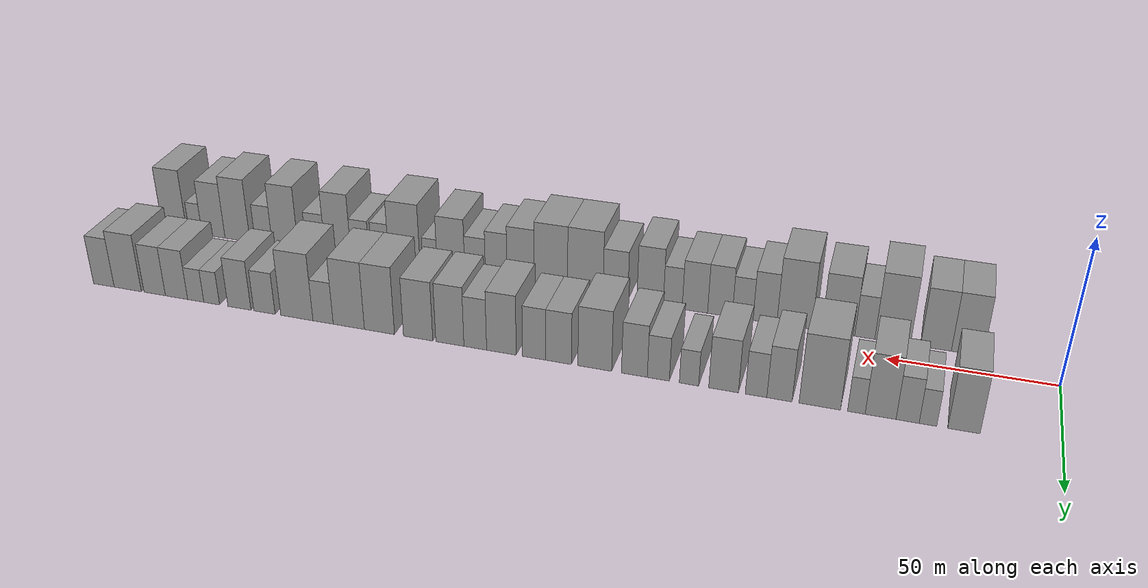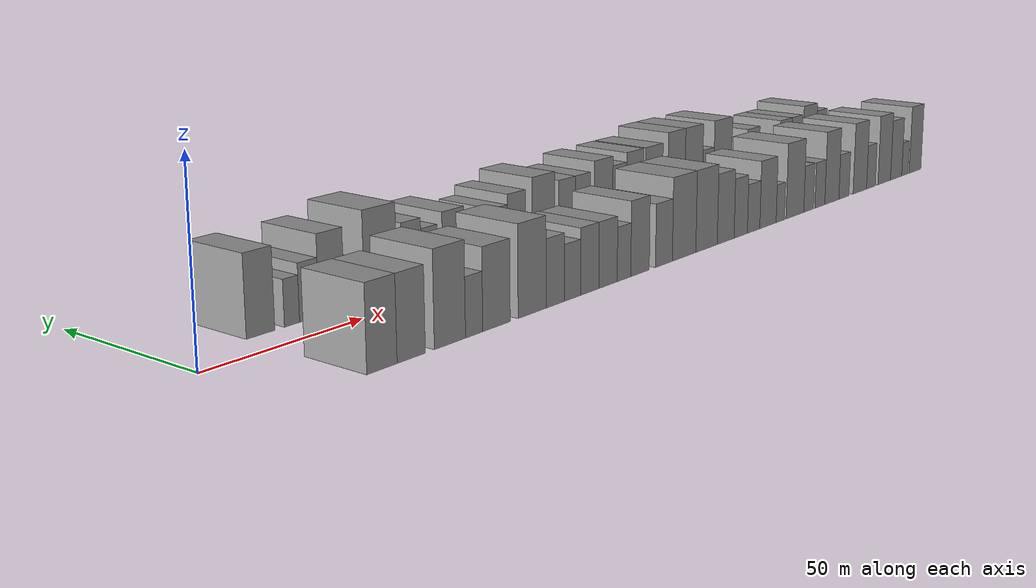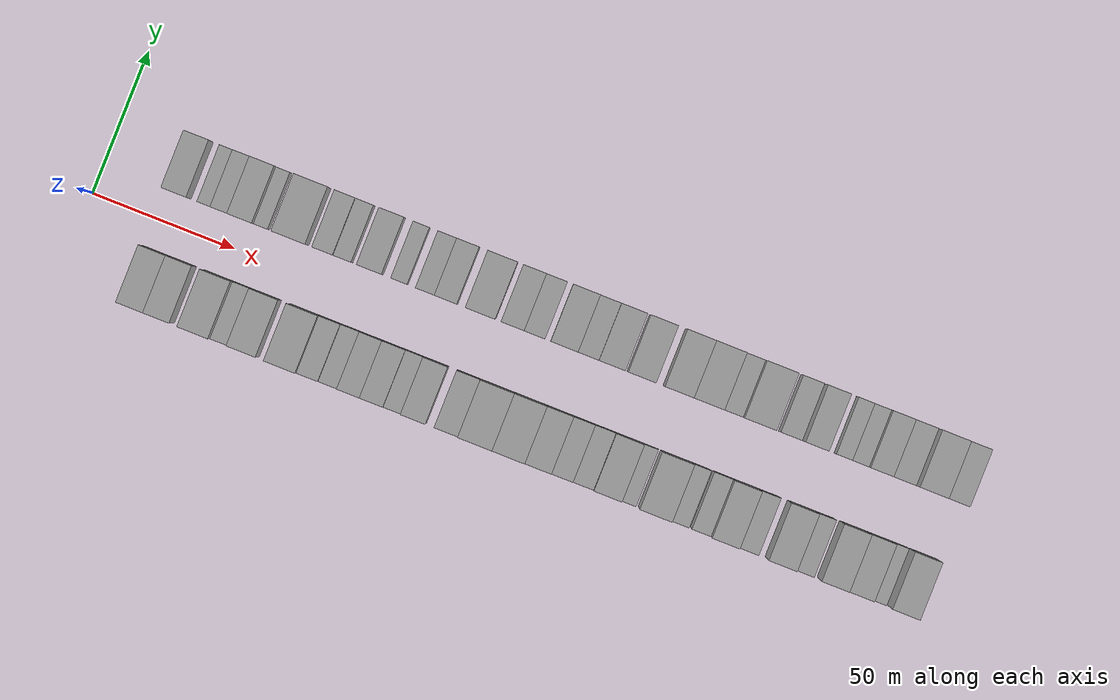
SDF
<sdf version="1.6">
 <world name="default">
  <scene>
   <sky><clouds><speed>12</speed></clouds></sky>
   <ambient>0.4 0.4 0.4 1</ambient>
   <background>0.7 0.7 0.7 1</background>
   <shadows>1</shadows>
  </scene>
  <gravity>0 0 -9.8066</gravity>
  <magnetic_field>6e-06 2.3e-05 -4.2e-05</magnetic_field>
  <physics default="0" name="default_physics" type="ode">
   <ode>
    <solver>
     <type>quick</type>
     <iters>10</iters>
     <sor>1.0</sor>
     <use_dynamic_moi_rescaling>0</use_dynamic_moi_rescaling>
    </solver>
    <constraints>
     <cfm>0</cfm>
     <erp>0.2</erp>
     <contact_max_correcting_vel>100</contact_max_correcting_vel>
     <contact_surface_layer>0.001</contact_surface_layer>
    </constraints>
   </ode>
   <max_step_size>0.004</max_step_size>
   <real_time_factor>1</real_time_factor>
   <real_time_update_rate>250</real_time_update_rate>
  </physics>
  <light name="sun" type="directional">
   <pose>0 0 10 0 0 0</pose>
   <diffuse>0.8 0.8 0.8 1</diffuse>
   <specular>0.2 0.2 0.2 1</specular>
   <attenuation>
    <range>1000</range>
    <constant>0.9</constant>
    <linear>0.01</linear>
    <quadratic>0.001</quadratic>
   </attenuation>
   <direction>-0.5 0.1 -0.9</direction>
  </light>
  <model name="building_1">
   <static>1</static>
   <pose>26.3888 20.0000 0 0.000000 0.000000 1.570796</pose>
   <link name="link">
    <pose>0 0 10.50 0 0 0</pose>
    <collision name="collision"><geometry><box><size>20.0000 8.7776 21.0000</size></box></geometry></collision>
    <visual name="visual">
     <cast_shadows>0</cast_shadows>
     <geometry><box><size>20.0000 8.7776 21.0000</size></box></geometry>
     <material>
      <script>
       <uri>model://grey_wall/materials/scripts</uri>
       <uri>model://grey_wall/materials/textures</uri>
       <name>vrc/grey_wall</name>
      </script>
     </material>
    </visual>
   </link>
  </model>
  <model name="building_2">
   <static>1</static>
   <pose>36.1989 20.0000 0 0.000000 0.000000 1.570796</pose>
   <link name="link">
    <pose>0 0 6.00 0 0 0</pose>
    <collision name="collision"><geometry><box><size>20.0000 4.8425 12.0000</size></box></geometry></collision>
    <visual name="visual">
     <cast_shadows>0</cast_shadows>
     <geometry><box><size>20.0000 4.8425 12.0000</size></box></geometry>
     <material>
      <script>
       <uri>model://grey_wall/materials/scripts</uri>
       <uri>model://grey_wall/materials/textures</uri>
       <name>vrc/grey_wall</name>
      </script>
     </material>
    </visual>
   </link>
  </model>
  <model name="building_3">
   <static>1</static>
   <pose>41.8042 20.0000 0 0.000000 0.000000 1.570796</pose>
   <link name="link">
    <pose>0 0 7.50 0 0 0</pose>
    <collision name="collision"><geometry><box><size>20.0000 6.3682 15.0000</size></box></geometry></collision>
    <visual name="visual">
     <cast_shadows>0</cast_shadows>
     <geometry><box><size>20.0000 6.3682 15.0000</size></box></geometry>
     <material>
      <script>
       <uri>model://grey_wall/materials/scripts</uri>
       <uri>model://grey_wall/materials/textures</uri>
       <name>vrc/grey_wall</name>
      </script>
     </material>
    </visual>
   </link>
  </model>
  <model name="building_4">
   <static>1</static>
   <pose>49.3002 20.0000 0 0.000000 0.000000 1.570796</pose>
   <link name="link">
    <pose>0 0 10.50 0 0 0</pose>
    <collision name="collision"><geometry><box><size>20.0000 8.6239 21.0000</size></box></geometry></collision>
    <visual name="visual">
     <cast_shadows>0</cast_shadows>
     <geometry><box><size>20.0000 8.6239 21.0000</size></box></geometry>
     <material>
      <script>
       <uri>model://grey_wall/materials/scripts</uri>
       <uri>model://grey_wall/materials/textures</uri>
       <name>vrc/grey_wall</name>
      </script>
     </material>
    </visual>
   </link>
  </model>
  <model name="building_5">
   <static>1</static>
   <pose>56.0855 20.0000 0 0.000000 0.000000 1.570796</pose>
   <link name="link">
    <pose>0 0 6.00 0 0 0</pose>
    <collision name="collision"><geometry><box><size>20.0000 4.9467 12.0000</size></box></geometry></collision>
    <visual name="visual">
     <cast_shadows>0</cast_shadows>
     <geometry><box><size>20.0000 4.9467 12.0000</size></box></geometry>
     <material>
      <script>
       <uri>model://grey_wall/materials/scripts</uri>
       <uri>model://grey_wall/materials/textures</uri>
       <name>vrc/grey_wall</name>
      </script>
     </material>
    </visual>
   </link>
  </model>
  <model name="building_6">
   <static>1</static>
   <pose>66.4720 20.0000 0 0.000000 0.000000 1.570796</pose>
   <link name="link">
    <pose>0 0 12.00 0 0 0</pose>
    <collision name="collision"><geometry><box><size>20.0000 11.8263 24.0000</size></box></geometry></collision>
    <visual name="visual">
     <cast_shadows>0</cast_shadows>
     <geometry><box><size>20.0000 11.8263 24.0000</size></box></geometry>
     <material>
      <script>
       <uri>model://grey_wall/materials/scripts</uri>
       <uri>model://grey_wall/materials/textures</uri>
       <name>vrc/grey_wall</name>
      </script>
     </material>
    </visual>
   </link>
  </model>
  <model name="building_7">
   <static>1</static>
   <pose>78.0322 20.0000 0 0.000000 0.000000 1.570796</pose>
   <link name="link">
    <pose>0 0 9.00 0 0 0</pose>
    <collision name="collision"><geometry><box><size>20.0000 7.2941 18.0000</size></box></geometry></collision>
    <visual name="visual">
     <cast_shadows>0</cast_shadows>
     <geometry><box><size>20.0000 7.2941 18.0000</size></box></geometry>
     <material>
      <script>
       <uri>model://grey_wall/materials/scripts</uri>
       <uri>model://grey_wall/materials/textures</uri>
       <name>vrc/grey_wall</name>
      </script>
     </material>
    </visual>
   </link>
  </model>
  <model name="building_8">
   <static>1</static>
   <pose>84.8287 20.0000 0 0.000000 0.000000 1.570796</pose>
   <link name="link">
    <pose>0 0 7.50 0 0 0</pose>
    <collision name="collision"><geometry><box><size>20.0000 6.2990 15.0000</size></box></geometry></collision>
    <visual name="visual">
     <cast_shadows>0</cast_shadows>
     <geometry><box><size>20.0000 6.2990 15.0000</size></box></geometry>
     <material>
      <script>
       <uri>model://grey_wall/materials/scripts</uri>
       <uri>model://grey_wall/materials/textures</uri>
       <name>vrc/grey_wall</name>
      </script>
     </material>
    </visual>
   </link>
  </model>
  <model name="building_9">
   <static>1</static>
   <pose>94.3611 20.0000 0 0.000000 0.000000 1.570796</pose>
   <link name="link">
    <pose>0 0 9.00 0 0 0</pose>
    <collision name="collision"><geometry><box><size>20.0000 8.7658 18.0000</size></box></geometry></collision>
    <visual name="visual">
     <cast_shadows>0</cast_shadows>
     <geometry><box><size>20.0000 8.7658 18.0000</size></box></geometry>
     <material>
      <script>
       <uri>model://grey_wall/materials/scripts</uri>
       <uri>model://grey_wall/materials/textures</uri>
       <name>vrc/grey_wall</name>
      </script>
     </material>
    </visual>
   </link>
  </model>
  <model name="building_10">
   <static>1</static>
   <pose>104.6269 20.0000 0 0.000000 0.000000 1.570796</pose>
   <link name="link">
    <pose>0 0 6.00 0 0 0</pose>
    <collision name="collision"><geometry><box><size>20.0000 5.7658 12.0000</size></box></geometry></collision>
    <visual name="visual">
     <cast_shadows>0</cast_shadows>
     <geometry><box><size>20.0000 5.7658 12.0000</size></box></geometry>
     <material>
      <script>
       <uri>model://grey_wall/materials/scripts</uri>
       <uri>model://grey_wall/materials/textures</uri>
       <name>vrc/grey_wall</name>
      </script>
     </material>
    </visual>
   </link>
  </model>
  <model name="building_11">
   <static>1</static>
   <pose>113.8490 20.0000 0 0.000000 0.000000 1.570796</pose>
   <link name="link">
    <pose>0 0 7.50 0 0 0</pose>
    <collision name="collision"><geometry><box><size>20.0000 6.6784 15.0000</size></box></geometry></collision>
    <visual name="visual">
     <cast_shadows>0</cast_shadows>
     <geometry><box><size>20.0000 6.6784 15.0000</size></box></geometry>
     <material>
      <script>
       <uri>model://grey_wall/materials/scripts</uri>
       <uri>model://grey_wall/materials/textures</uri>
       <name>vrc/grey_wall</name>
      </script>
     </material>
    </visual>
   </link>
  </model>
  <model name="building_12">
   <static>1</static>
   <pose>121.1277 20.0000 0 0.000000 0.000000 1.570796</pose>
   <link name="link">
    <pose>0 0 9.00 0 0 0</pose>
    <collision name="collision"><geometry><box><size>20.0000 7.8790 18.0000</size></box></geometry></collision>
    <visual name="visual">
     <cast_shadows>0</cast_shadows>
     <geometry><box><size>20.0000 7.8790 18.0000</size></box></geometry>
     <material>
      <script>
       <uri>model://grey_wall/materials/scripts</uri>
       <uri>model://grey_wall/materials/textures</uri>
       <name>vrc/grey_wall</name>
      </script>
     </material>
    </visual>
   </link>
  </model>
  <model name="building_13">
   <static>1</static>
   <pose>133.2962 20.0000 0 0.000000 0.000000 1.570796</pose>
   <link name="link">
    <pose>0 0 10.50 0 0 0</pose>
    <collision name="collision"><geometry><box><size>20.0000 10.4580 21.0000</size></box></geometry></collision>
    <visual name="visual">
     <cast_shadows>0</cast_shadows>
     <geometry><box><size>20.0000 10.4580 21.0000</size></box></geometry>
     <material>
      <script>
       <uri>model://grey_wall/materials/scripts</uri>
       <uri>model://grey_wall/materials/textures</uri>
       <name>vrc/grey_wall</name>
      </script>
     </material>
    </visual>
   </link>
  </model>
  <model name="building_14">
   <static>1</static>
   <pose>144.5761 20.0000 0 0.000000 0.000000 1.570796</pose>
   <link name="link">
    <pose>0 0 9.00 0 0 0</pose>
    <collision name="collision"><geometry><box><size>20.0000 8.1019 18.0000</size></box></geometry></collision>
    <visual name="visual">
     <cast_shadows>0</cast_shadows>
     <geometry><box><size>20.0000 8.1019 18.0000</size></box></geometry>
     <material>
      <script>
       <uri>model://grey_wall/materials/scripts</uri>
       <uri>model://grey_wall/materials/textures</uri>
       <name>vrc/grey_wall</name>
      </script>
     </material>
    </visual>
   </link>
  </model>
  <model name="building_15">
   <static>1</static>
   <pose>152.2829 20.0000 0 0.000000 0.000000 1.570796</pose>
   <link name="link">
    <pose>0 0 9.00 0 0 0</pose>
    <collision name="collision"><geometry><box><size>20.0000 7.3115 18.0000</size></box></geometry></collision>
    <visual name="visual">
     <cast_shadows>0</cast_shadows>
     <geometry><box><size>20.0000 7.3115 18.0000</size></box></geometry>
     <material>
      <script>
       <uri>model://grey_wall/materials/scripts</uri>
       <uri>model://grey_wall/materials/textures</uri>
       <name>vrc/grey_wall</name>
      </script>
     </material>
    </visual>
   </link>
  </model>
  <model name="building_16">
   <static>1</static>
   <pose>162.6856 20.0000 0 0.000000 0.000000 1.570796</pose>
   <link name="link">
    <pose>0 0 10.50 0 0 0</pose>
    <collision name="collision"><geometry><box><size>20.0000 9.4940 21.0000</size></box></geometry></collision>
    <visual name="visual">
     <cast_shadows>0</cast_shadows>
     <geometry><box><size>20.0000 9.4940 21.0000</size></box></geometry>
     <material>
      <script>
       <uri>model://grey_wall/materials/scripts</uri>
       <uri>model://grey_wall/materials/textures</uri>
       <name>vrc/grey_wall</name>
      </script>
     </material>
    </visual>
   </link>
  </model>
  <model name="building_17">
   <static>1</static>
   <pose>171.1041 20.0000 0 0.000000 0.000000 1.570796</pose>
   <link name="link">
    <pose>0 0 9.00 0 0 0</pose>
    <collision name="collision"><geometry><box><size>20.0000 7.3430 18.0000</size></box></geometry></collision>
    <visual name="visual">
     <cast_shadows>0</cast_shadows>
     <geometry><box><size>20.0000 7.3430 18.0000</size></box></geometry>
     <material>
      <script>
       <uri>model://grey_wall/materials/scripts</uri>
       <uri>model://grey_wall/materials/textures</uri>
       <name>vrc/grey_wall</name>
      </script>
     </material>
    </visual>
   </link>
  </model>
  <model name="building_18">
   <static>1</static>
   <pose>179.3679 20.0000 0 0.000000 0.000000 1.570796</pose>
   <link name="link">
    <pose>0 0 10.50 0 0 0</pose>
    <collision name="collision"><geometry><box><size>20.0000 9.1845 21.0000</size></box></geometry></collision>
    <visual name="visual">
     <cast_shadows>0</cast_shadows>
     <geometry><box><size>20.0000 9.1845 21.0000</size></box></geometry>
     <material>
      <script>
       <uri>model://grey_wall/materials/scripts</uri>
       <uri>model://grey_wall/materials/textures</uri>
       <name>vrc/grey_wall</name>
      </script>
     </material>
    </visual>
   </link>
  </model>
  <model name="building_19">
   <static>1</static>
   <pose>189.8093 20.0000 0 0.000000 0.000000 1.570796</pose>
   <link name="link">
    <pose>0 0 10.50 0 0 0</pose>
    <collision name="collision"><geometry><box><size>20.0000 9.6983 21.0000</size></box></geometry></collision>
    <visual name="visual">
     <cast_shadows>0</cast_shadows>
     <geometry><box><size>20.0000 9.6983 21.0000</size></box></geometry>
     <material>
      <script>
       <uri>model://grey_wall/materials/scripts</uri>
       <uri>model://grey_wall/materials/textures</uri>
       <name>vrc/grey_wall</name>
      </script>
     </material>
    </visual>
   </link>
  </model>
  <model name="building_20">
   <static>1</static>
   <pose>202.7111 20.0000 0 0.000000 0.000000 1.570796</pose>
   <link name="link">
    <pose>0 0 12.00 0 0 0</pose>
    <collision name="collision"><geometry><box><size>20.0000 10.1054 24.0000</size></box></geometry></collision>
    <visual name="visual">
     <cast_shadows>0</cast_shadows>
     <geometry><box><size>20.0000 10.1054 24.0000</size></box></geometry>
     <material>
      <script>
       <uri>model://grey_wall/materials/scripts</uri>
       <uri>model://grey_wall/materials/textures</uri>
       <name>vrc/grey_wall</name>
      </script>
     </material>
    </visual>
   </link>
  </model>
  <model name="building_21">
   <static>1</static>
   <pose>213.0783 20.0000 0 0.000000 0.000000 1.570796</pose>
   <link name="link">
    <pose>0 0 12.00 0 0 0</pose>
    <collision name="collision"><geometry><box><size>20.0000 10.6290 24.0000</size></box></geometry></collision>
    <visual name="visual">
     <cast_shadows>0</cast_shadows>
     <geometry><box><size>20.0000 10.6290 24.0000</size></box></geometry>
     <material>
      <script>
       <uri>model://grey_wall/materials/scripts</uri>
       <uri>model://grey_wall/materials/textures</uri>
       <name>vrc/grey_wall</name>
      </script>
     </material>
    </visual>
   </link>
  </model>
  <model name="building_22">
   <static>1</static>
   <pose>221.8662 20.0000 0 0.000000 0.000000 1.570796</pose>
   <link name="link">
    <pose>0 0 7.50 0 0 0</pose>
    <collision name="collision"><geometry><box><size>20.0000 6.9468 15.0000</size></box></geometry></collision>
    <visual name="visual">
     <cast_shadows>0</cast_shadows>
     <geometry><box><size>20.0000 6.9468 15.0000</size></box></geometry>
     <material>
      <script>
       <uri>model://grey_wall/materials/scripts</uri>
       <uri>model://grey_wall/materials/textures</uri>
       <name>vrc/grey_wall</name>
      </script>
     </material>
    </visual>
   </link>
  </model>
  <model name="building_23">
   <static>1</static>
   <pose>230.9216 20.0000 0 0.000000 0.000000 1.570796</pose>
   <link name="link">
    <pose>0 0 12.00 0 0 0</pose>
    <collision name="collision"><geometry><box><size>20.0000 11.1640 24.0000</size></box></geometry></collision>
    <visual name="visual">
     <cast_shadows>0</cast_shadows>
     <geometry><box><size>20.0000 11.1640 24.0000</size></box></geometry>
     <material>
      <script>
       <uri>model://grey_wall/materials/scripts</uri>
       <uri>model://grey_wall/materials/textures</uri>
       <name>vrc/grey_wall</name>
      </script>
     </material>
    </visual>
   </link>
  </model>
  <model name="building_24">
   <static>1</static>
   <pose>242.2442 20.0000 0 0.000000 0.000000 1.570796</pose>
   <link name="link">
    <pose>0 0 7.50 0 0 0</pose>
    <collision name="collision"><geometry><box><size>20.0000 7.4812 15.0000</size></box></geometry></collision>
    <visual name="visual">
     <cast_shadows>0</cast_shadows>
     <geometry><box><size>20.0000 7.4812 15.0000</size></box></geometry>
     <material>
      <script>
       <uri>model://grey_wall/materials/scripts</uri>
       <uri>model://grey_wall/materials/textures</uri>
       <name>vrc/grey_wall</name>
      </script>
     </material>
    </visual>
   </link>
  </model>
  <model name="building_25">
   <static>1</static>
   <pose>251.0758 20.0000 0 0.000000 0.000000 1.570796</pose>
   <link name="link">
    <pose>0 0 9.00 0 0 0</pose>
    <collision name="collision"><geometry><box><size>20.0000 8.1820 18.0000</size></box></geometry></collision>
    <visual name="visual">
     <cast_shadows>0</cast_shadows>
     <geometry><box><size>20.0000 8.1820 18.0000</size></box></geometry>
     <material>
      <script>
       <uri>model://grey_wall/materials/scripts</uri>
       <uri>model://grey_wall/materials/textures</uri>
       <name>vrc/grey_wall</name>
      </script>
     </material>
    </visual>
   </link>
  </model>
  <model name="building_26">
   <static>1</static>
   <pose>260.9896 20.0000 0 0.000000 0.000000 1.570796</pose>
   <link name="link">
    <pose>0 0 6.00 0 0 0</pose>
    <collision name="collision"><geometry><box><size>20.0000 5.6456 12.0000</size></box></geometry></collision>
    <visual name="visual">
     <cast_shadows>0</cast_shadows>
     <geometry><box><size>20.0000 5.6456 12.0000</size></box></geometry>
     <material>
      <script>
       <uri>model://grey_wall/materials/scripts</uri>
       <uri>model://grey_wall/materials/textures</uri>
       <name>vrc/grey_wall</name>
      </script>
     </material>
    </visual>
   </link>
  </model>
  <model name="building_27">
   <static>1</static>
   <pose>266.7428 20.0000 0 0.000000 0.000000 1.570796</pose>
   <link name="link">
    <pose>0 0 6.00 0 0 0</pose>
    <collision name="collision"><geometry><box><size>20.0000 5.8609 12.0000</size></box></geometry></collision>
    <visual name="visual">
     <cast_shadows>0</cast_shadows>
     <geometry><box><size>20.0000 5.8609 12.0000</size></box></geometry>
     <material>
      <script>
       <uri>model://grey_wall/materials/scripts</uri>
       <uri>model://grey_wall/materials/textures</uri>
       <name>vrc/grey_wall</name>
      </script>
     </material>
    </visual>
   </link>
  </model>
  <model name="building_28">
   <static>1</static>
   <pose>273.7163 20.0000 0 0.000000 0.000000 1.570796</pose>
   <link name="link">
    <pose>0 0 9.00 0 0 0</pose>
    <collision name="collision"><geometry><box><size>20.0000 8.0861 18.0000</size></box></geometry></collision>
    <visual name="visual">
     <cast_shadows>0</cast_shadows>
     <geometry><box><size>20.0000 8.0861 18.0000</size></box></geometry>
     <material>
      <script>
       <uri>model://grey_wall/materials/scripts</uri>
       <uri>model://grey_wall/materials/textures</uri>
       <name>vrc/grey_wall</name>
      </script>
     </material>
    </visual>
   </link>
  </model>
  <model name="building_29">
   <static>1</static>
   <pose>281.6931 20.0000 0 0.000000 0.000000 1.570796</pose>
   <link name="link">
    <pose>0 0 9.00 0 0 0</pose>
    <collision name="collision"><geometry><box><size>20.0000 7.8675 18.0000</size></box></geometry></collision>
    <visual name="visual">
     <cast_shadows>0</cast_shadows>
     <geometry><box><size>20.0000 7.8675 18.0000</size></box></geometry>
     <material>
      <script>
       <uri>model://grey_wall/materials/scripts</uri>
       <uri>model://grey_wall/materials/textures</uri>
       <name>vrc/grey_wall</name>
      </script>
     </material>
    </visual>
   </link>
  </model>
  <model name="building_30">
   <static>1</static>
   <pose>291.6609 20.0000 0 0.000000 0.000000 1.570796</pose>
   <link name="link">
    <pose>0 0 10.50 0 0 0</pose>
    <collision name="collision"><geometry><box><size>20.0000 10.0680 21.0000</size></box></geometry></collision>
    <visual name="visual">
     <cast_shadows>0</cast_shadows>
     <geometry><box><size>20.0000 10.0680 21.0000</size></box></geometry>
     <material>
      <script>
       <uri>model://grey_wall/materials/scripts</uri>
       <uri>model://grey_wall/materials/textures</uri>
       <name>vrc/grey_wall</name>
      </script>
     </material>
    </visual>
   </link>
  </model>
  <model name="building_31">
   <static>1</static>
   <pose>300.5624 20.0000 0 0.000000 0.000000 1.570796</pose>
   <link name="link">
    <pose>0 0 9.00 0 0 0</pose>
    <collision name="collision"><geometry><box><size>20.0000 7.7350 18.0000</size></box></geometry></collision>
    <visual name="visual">
     <cast_shadows>0</cast_shadows>
     <geometry><box><size>20.0000 7.7350 18.0000</size></box></geometry>
     <material>
      <script>
       <uri>model://grey_wall/materials/scripts</uri>
       <uri>model://grey_wall/materials/textures</uri>
       <name>vrc/grey_wall</name>
      </script>
     </material>
    </visual>
   </link>
  </model>
  <model name="building_32">
   <static>1</static>
   <pose>26.7276 -20.0000 0 0.000000 0.000000 1.570796</pose>
   <link name="link">
    <pose>0 0 10.50 0 0 0</pose>
    <collision name="collision"><geometry><box><size>20.0000 9.4552 21.0000</size></box></geometry></collision>
    <visual name="visual">
     <cast_shadows>0</cast_shadows>
     <geometry><box><size>20.0000 9.4552 21.0000</size></box></geometry>
     <material>
      <script>
       <uri>model://grey_wall/materials/scripts</uri>
       <uri>model://grey_wall/materials/textures</uri>
       <name>vrc/grey_wall</name>
      </script>
     </material>
    </visual>
   </link>
  </model>
  <model name="building_33">
   <static>1</static>
   <pose>36.0451 -20.0000 0 0.000000 0.000000 1.570796</pose>
   <link name="link">
    <pose>0 0 10.50 0 0 0</pose>
    <collision name="collision"><geometry><box><size>20.0000 9.1799 21.0000</size></box></geometry></collision>
    <visual name="visual">
     <cast_shadows>0</cast_shadows>
     <geometry><box><size>20.0000 9.1799 21.0000</size></box></geometry>
     <material>
      <script>
       <uri>model://grey_wall/materials/scripts</uri>
       <uri>model://grey_wall/materials/textures</uri>
       <name>vrc/grey_wall</name>
      </script>
     </material>
    </visual>
   </link>
  </model>
  <model name="building_34">
   <static>1</static>
   <pose>49.0089 -20.0000 0 0.000000 0.000000 1.570796</pose>
   <link name="link">
    <pose>0 0 12.00 0 0 0</pose>
    <collision name="collision"><geometry><box><size>20.0000 10.7476 24.0000</size></box></geometry></collision>
    <visual name="visual">
     <cast_shadows>0</cast_shadows>
     <geometry><box><size>20.0000 10.7476 24.0000</size></box></geometry>
     <material>
      <script>
       <uri>model://grey_wall/materials/scripts</uri>
       <uri>model://grey_wall/materials/textures</uri>
       <name>vrc/grey_wall</name>
      </script>
     </material>
    </visual>
   </link>
  </model>
  <model name="building_35">
   <static>1</static>
   <pose>57.4555 -20.0000 0 0.000000 0.000000 1.570796</pose>
   <link name="link">
    <pose>0 0 7.50 0 0 0</pose>
    <collision name="collision"><geometry><box><size>20.0000 6.1455 15.0000</size></box></geometry></collision>
    <visual name="visual">
     <cast_shadows>0</cast_shadows>
     <geometry><box><size>20.0000 6.1455 15.0000</size></box></geometry>
     <material>
      <script>
       <uri>model://grey_wall/materials/scripts</uri>
       <uri>model://grey_wall/materials/textures</uri>
       <name>vrc/grey_wall</name>
      </script>
     </material>
    </visual>
   </link>
  </model>
  <model name="building_36">
   <static>1</static>
   <pose>65.6243 -20.0000 0 0.000000 0.000000 1.570796</pose>
   <link name="link">
    <pose>0 0 10.50 0 0 0</pose>
    <collision name="collision"><geometry><box><size>20.0000 10.1923 21.0000</size></box></geometry></collision>
    <visual name="visual">
     <cast_shadows>0</cast_shadows>
     <geometry><box><size>20.0000 10.1923 21.0000</size></box></geometry>
     <material>
      <script>
       <uri>model://grey_wall/materials/scripts</uri>
       <uri>model://grey_wall/materials/textures</uri>
       <name>vrc/grey_wall</name>
      </script>
     </material>
    </visual>
   </link>
  </model>
  <model name="building_37">
   <static>1</static>
   <pose>79.2264 -20.0000 0 0.000000 0.000000 1.570796</pose>
   <link name="link">
    <pose>0 0 12.00 0 0 0</pose>
    <collision name="collision"><geometry><box><size>20.0000 11.0119 24.0000</size></box></geometry></collision>
    <visual name="visual">
     <cast_shadows>0</cast_shadows>
     <geometry><box><size>20.0000 11.0119 24.0000</size></box></geometry>
     <material>
      <script>
       <uri>model://grey_wall/materials/scripts</uri>
       <uri>model://grey_wall/materials/textures</uri>
       <name>vrc/grey_wall</name>
      </script>
     </material>
    </visual>
   </link>
  </model>
  <model name="building_38">
   <static>1</static>
   <pose>88.5035 -20.0000 0 0.000000 0.000000 1.570796</pose>
   <link name="link">
    <pose>0 0 9.00 0 0 0</pose>
    <collision name="collision"><geometry><box><size>20.0000 7.5423 18.0000</size></box></geometry></collision>
    <visual name="visual">
     <cast_shadows>0</cast_shadows>
     <geometry><box><size>20.0000 7.5423 18.0000</size></box></geometry>
     <material>
      <script>
       <uri>model://grey_wall/materials/scripts</uri>
       <uri>model://grey_wall/materials/textures</uri>
       <name>vrc/grey_wall</name>
      </script>
     </material>
    </visual>
   </link>
  </model>
  <model name="building_39">
   <static>1</static>
   <pose>95.5723 -20.0000 0 0.000000 0.000000 1.570796</pose>
   <link name="link">
    <pose>0 0 7.50 0 0 0</pose>
    <collision name="collision"><geometry><box><size>20.0000 6.5952 15.0000</size></box></geometry></collision>
    <visual name="visual">
     <cast_shadows>0</cast_shadows>
     <geometry><box><size>20.0000 6.5952 15.0000</size></box></geometry>
     <material>
      <script>
       <uri>model://grey_wall/materials/scripts</uri>
       <uri>model://grey_wall/materials/textures</uri>
       <name>vrc/grey_wall</name>
      </script>
     </material>
    </visual>
   </link>
  </model>
  <model name="building_40">
   <static>1</static>
   <pose>102.8323 -20.0000 0 0.000000 0.000000 1.570796</pose>
   <link name="link">
    <pose>0 0 9.00 0 0 0</pose>
    <collision name="collision"><geometry><box><size>20.0000 7.9248 18.0000</size></box></geometry></collision>
    <visual name="visual">
     <cast_shadows>0</cast_shadows>
     <geometry><box><size>20.0000 7.9248 18.0000</size></box></geometry>
     <material>
      <script>
       <uri>model://grey_wall/materials/scripts</uri>
       <uri>model://grey_wall/materials/textures</uri>
       <name>vrc/grey_wall</name>
      </script>
     </material>
    </visual>
   </link>
  </model>
  <model name="building_41">
   <static>1</static>
   <pose>110.9113 -20.0000 0 0.000000 0.000000 1.570796</pose>
   <link name="link">
    <pose>0 0 9.00 0 0 0</pose>
    <collision name="collision"><geometry><box><size>20.0000 8.2333 18.0000</size></box></geometry></collision>
    <visual name="visual">
     <cast_shadows>0</cast_shadows>
     <geometry><box><size>20.0000 8.2333 18.0000</size></box></geometry>
     <material>
      <script>
       <uri>model://grey_wall/materials/scripts</uri>
       <uri>model://grey_wall/materials/textures</uri>
       <name>vrc/grey_wall</name>
      </script>
     </material>
    </visual>
   </link>
  </model>
  <model name="building_42">
   <static>1</static>
   <pose>118.1286 -20.0000 0 0.000000 0.000000 1.570796</pose>
   <link name="link">
    <pose>0 0 7.50 0 0 0</pose>
    <collision name="collision"><geometry><box><size>20.0000 6.2013 15.0000</size></box></geometry></collision>
    <visual name="visual">
     <cast_shadows>0</cast_shadows>
     <geometry><box><size>20.0000 6.2013 15.0000</size></box></geometry>
     <material>
      <script>
       <uri>model://grey_wall/materials/scripts</uri>
       <uri>model://grey_wall/materials/textures</uri>
       <name>vrc/grey_wall</name>
      </script>
     </material>
    </visual>
   </link>
  </model>
  <model name="building_43">
   <static>1</static>
   <pose>125.5785 -20.0000 0 0.000000 0.000000 1.570796</pose>
   <link name="link">
    <pose>0 0 10.50 0 0 0</pose>
    <collision name="collision"><geometry><box><size>20.0000 8.6984 21.0000</size></box></geometry></collision>
    <visual name="visual">
     <cast_shadows>0</cast_shadows>
     <geometry><box><size>20.0000 8.6984 21.0000</size></box></geometry>
     <material>
      <script>
       <uri>model://grey_wall/materials/scripts</uri>
       <uri>model://grey_wall/materials/textures</uri>
       <name>vrc/grey_wall</name>
      </script>
     </material>
    </visual>
   </link>
  </model>
  <model name="building_44">
   <static>1</static>
   <pose>137.0789 -20.0000 0 0.000000 0.000000 1.570796</pose>
   <link name="link">
    <pose>0 0 9.00 0 0 0</pose>
    <collision name="collision"><geometry><box><size>20.0000 8.3025 18.0000</size></box></geometry></collision>
    <visual name="visual">
     <cast_shadows>0</cast_shadows>
     <geometry><box><size>20.0000 8.3025 18.0000</size></box></geometry>
     <material>
      <script>
       <uri>model://grey_wall/materials/scripts</uri>
       <uri>model://grey_wall/materials/textures</uri>
       <name>vrc/grey_wall</name>
      </script>
     </material>
    </visual>
   </link>
  </model>
  <model name="building_45">
   <static>1</static>
   <pose>147.2234 -20.0000 0 0.000000 0.000000 1.570796</pose>
   <link name="link">
    <pose>0 0 12.00 0 0 0</pose>
    <collision name="collision"><geometry><box><size>20.0000 11.9864 24.0000</size></box></geometry></collision>
    <visual name="visual">
     <cast_shadows>0</cast_shadows>
     <geometry><box><size>20.0000 11.9864 24.0000</size></box></geometry>
     <material>
      <script>
       <uri>model://grey_wall/materials/scripts</uri>
       <uri>model://grey_wall/materials/textures</uri>
       <name>vrc/grey_wall</name>
      </script>
     </material>
    </visual>
   </link>
  </model>
  <model name="building_46">
   <static>1</static>
   <pose>158.9247 -20.0000 0 0.000000 0.000000 1.570796</pose>
   <link name="link">
    <pose>0 0 12.00 0 0 0</pose>
    <collision name="collision"><geometry><box><size>20.0000 11.4162 24.0000</size></box></geometry></collision>
    <visual name="visual">
     <cast_shadows>0</cast_shadows>
     <geometry><box><size>20.0000 11.4162 24.0000</size></box></geometry>
     <material>
      <script>
       <uri>model://grey_wall/materials/scripts</uri>
       <uri>model://grey_wall/materials/textures</uri>
       <name>vrc/grey_wall</name>
      </script>
     </material>
    </visual>
   </link>
  </model>
  <model name="building_47">
   <static>1</static>
   <pose>169.2884 -20.0000 0 0.000000 0.000000 1.570796</pose>
   <link name="link">
    <pose>0 0 10.50 0 0 0</pose>
    <collision name="collision"><geometry><box><size>20.0000 9.3111 21.0000</size></box></geometry></collision>
    <visual name="visual">
     <cast_shadows>0</cast_shadows>
     <geometry><box><size>20.0000 9.3111 21.0000</size></box></geometry>
     <material>
      <script>
       <uri>model://grey_wall/materials/scripts</uri>
       <uri>model://grey_wall/materials/textures</uri>
       <name>vrc/grey_wall</name>
      </script>
     </material>
    </visual>
   </link>
  </model>
  <model name="building_48">
   <static>1</static>
   <pose>177.7192 -20.0000 0 0.000000 0.000000 1.570796</pose>
   <link name="link">
    <pose>0 0 9.00 0 0 0</pose>
    <collision name="collision"><geometry><box><size>20.0000 7.5505 18.0000</size></box></geometry></collision>
    <visual name="visual">
     <cast_shadows>0</cast_shadows>
     <geometry><box><size>20.0000 7.5505 18.0000</size></box></geometry>
     <material>
      <script>
       <uri>model://grey_wall/materials/scripts</uri>
       <uri>model://grey_wall/materials/textures</uri>
       <name>vrc/grey_wall</name>
      </script>
     </material>
    </visual>
   </link>
  </model>
  <model name="building_49">
   <static>1</static>
   <pose>185.1221 -20.0000 0 0.000000 0.000000 1.570796</pose>
   <link name="link">
    <pose>0 0 7.50 0 0 0</pose>
    <collision name="collision"><geometry><box><size>20.0000 7.2553 15.0000</size></box></geometry></collision>
    <visual name="visual">
     <cast_shadows>0</cast_shadows>
     <geometry><box><size>20.0000 7.2553 15.0000</size></box></geometry>
     <material>
      <script>
       <uri>model://grey_wall/materials/scripts</uri>
       <uri>model://grey_wall/materials/textures</uri>
       <name>vrc/grey_wall</name>
      </script>
     </material>
    </visual>
   </link>
  </model>
  <model name="building_50">
   <static>1</static>
   <pose>193.6563 -20.0000 0 0.000000 0.000000 1.570796</pose>
   <link name="link">
    <pose>0 0 10.50 0 0 0</pose>
    <collision name="collision"><geometry><box><size>20.0000 9.8132 21.0000</size></box></geometry></collision>
    <visual name="visual">
     <cast_shadows>0</cast_shadows>
     <geometry><box><size>20.0000 9.8132 21.0000</size></box></geometry>
     <material>
      <script>
       <uri>model://grey_wall/materials/scripts</uri>
       <uri>model://grey_wall/materials/textures</uri>
       <name>vrc/grey_wall</name>
      </script>
     </material>
    </visual>
   </link>
  </model>
  <model name="building_51">
   <static>1</static>
   <pose>201.1185 -20.0000 0 0.000000 0.000000 1.570796</pose>
   <link name="link">
    <pose>0 0 6.00 0 0 0</pose>
    <collision name="collision"><geometry><box><size>20.0000 5.1112 12.0000</size></box></geometry></collision>
    <visual name="visual">
     <cast_shadows>0</cast_shadows>
     <geometry><box><size>20.0000 5.1112 12.0000</size></box></geometry>
     <material>
      <script>
       <uri>model://grey_wall/materials/scripts</uri>
       <uri>model://grey_wall/materials/textures</uri>
       <name>vrc/grey_wall</name>
      </script>
     </material>
    </visual>
   </link>
  </model>
  <model name="building_52">
   <static>1</static>
   <pose>210.3278 -20.0000 0 0.000000 0.000000 1.570796</pose>
   <link name="link">
    <pose>0 0 12.00 0 0 0</pose>
    <collision name="collision"><geometry><box><size>20.0000 11.3072 24.0000</size></box></geometry></collision>
    <visual name="visual">
     <cast_shadows>0</cast_shadows>
     <geometry><box><size>20.0000 11.3072 24.0000</size></box></geometry>
     <material>
      <script>
       <uri>model://grey_wall/materials/scripts</uri>
       <uri>model://grey_wall/materials/textures</uri>
       <name>vrc/grey_wall</name>
      </script>
     </material>
    </visual>
   </link>
  </model>
  <model name="building_53">
   <static>1</static>
   <pose>219.0681 -20.0000 0 0.000000 0.000000 1.570796</pose>
   <link name="link">
    <pose>0 0 7.50 0 0 0</pose>
    <collision name="collision"><geometry><box><size>20.0000 6.1735 15.0000</size></box></geometry></collision>
    <visual name="visual">
     <cast_shadows>0</cast_shadows>
     <geometry><box><size>20.0000 6.1735 15.0000</size></box></geometry>
     <material>
      <script>
       <uri>model://grey_wall/materials/scripts</uri>
       <uri>model://grey_wall/materials/textures</uri>
       <name>vrc/grey_wall</name>
      </script>
     </material>
    </visual>
   </link>
  </model>
  <model name="building_54">
   <static>1</static>
   <pose>226.4964 -20.0000 0 0.000000 0.000000 1.570796</pose>
   <link name="link">
    <pose>0 0 7.50 0 0 0</pose>
    <collision name="collision"><geometry><box><size>20.0000 6.6829 15.0000</size></box></geometry></collision>
    <visual name="visual">
     <cast_shadows>0</cast_shadows>
     <geometry><box><size>20.0000 6.6829 15.0000</size></box></geometry>
     <material>
      <script>
       <uri>model://grey_wall/materials/scripts</uri>
       <uri>model://grey_wall/materials/textures</uri>
       <name>vrc/grey_wall</name>
      </script>
     </material>
    </visual>
   </link>
  </model>
  <model name="building_55">
   <static>1</static>
   <pose>234.6679 -20.0000 0 0.000000 0.000000 1.570796</pose>
   <link name="link">
    <pose>0 0 12.00 0 0 0</pose>
    <collision name="collision"><geometry><box><size>20.0000 9.6603 24.0000</size></box></geometry></collision>
    <visual name="visual">
     <cast_shadows>0</cast_shadows>
     <geometry><box><size>20.0000 9.6603 24.0000</size></box></geometry>
     <material>
      <script>
       <uri>model://grey_wall/materials/scripts</uri>
       <uri>model://grey_wall/materials/textures</uri>
       <name>vrc/grey_wall</name>
      </script>
     </material>
    </visual>
   </link>
  </model>
  <model name="building_56">
   <static>1</static>
   <pose>243.0298 -20.0000 0 0.000000 0.000000 1.570796</pose>
   <link name="link">
    <pose>0 0 7.50 0 0 0</pose>
    <collision name="collision"><geometry><box><size>20.0000 7.0635 15.0000</size></box></geometry></collision>
    <visual name="visual">
     <cast_shadows>0</cast_shadows>
     <geometry><box><size>20.0000 7.0635 15.0000</size></box></geometry>
     <material>
      <script>
       <uri>model://grey_wall/materials/scripts</uri>
       <uri>model://grey_wall/materials/textures</uri>
       <name>vrc/grey_wall</name>
      </script>
     </material>
    </visual>
   </link>
  </model>
  <model name="building_57">
   <static>1</static>
   <pose>254.4848 -20.0000 0 0.000000 0.000000 1.570796</pose>
   <link name="link">
    <pose>0 0 12.00 0 0 0</pose>
    <collision name="collision"><geometry><box><size>20.0000 9.8466 24.0000</size></box></geometry></collision>
    <visual name="visual">
     <cast_shadows>0</cast_shadows>
     <geometry><box><size>20.0000 9.8466 24.0000</size></box></geometry>
     <material>
      <script>
       <uri>model://grey_wall/materials/scripts</uri>
       <uri>model://grey_wall/materials/textures</uri>
       <name>vrc/grey_wall</name>
      </script>
     </material>
    </visual>
   </link>
  </model>
  <model name="building_58">
   <static>1</static>
   <pose>262.6846 -20.0000 0 0.000000 0.000000 1.570796</pose>
   <link name="link">
    <pose>0 0 7.50 0 0 0</pose>
    <collision name="collision"><geometry><box><size>20.0000 6.5530 15.0000</size></box></geometry></collision>
    <visual name="visual">
     <cast_shadows>0</cast_shadows>
     <geometry><box><size>20.0000 6.5530 15.0000</size></box></geometry>
     <material>
      <script>
       <uri>model://grey_wall/materials/scripts</uri>
       <uri>model://grey_wall/materials/textures</uri>
       <name>vrc/grey_wall</name>
      </script>
     </material>
    </visual>
   </link>
  </model>
  <model name="building_59">
   <static>1</static>
   <pose>272.7969 -20.0000 0 0.000000 0.000000 1.570796</pose>
   <link name="link">
    <pose>0 0 12.00 0 0 0</pose>
    <collision name="collision"><geometry><box><size>20.0000 9.6715 24.0000</size></box></geometry></collision>
    <visual name="visual">
     <cast_shadows>0</cast_shadows>
     <geometry><box><size>20.0000 9.6715 24.0000</size></box></geometry>
     <material>
      <script>
       <uri>model://grey_wall/materials/scripts</uri>
       <uri>model://grey_wall/materials/textures</uri>
       <name>vrc/grey_wall</name>
      </script>
     </material>
    </visual>
   </link>
  </model>
  <model name="building_60">
   <static>1</static>
   <pose>282.0987 -20.0000 0 0.000000 0.000000 1.570796</pose>
   <link name="link">
    <pose>0 0 10.50 0 0 0</pose>
    <collision name="collision"><geometry><box><size>20.0000 8.9321 21.0000</size></box></geometry></collision>
    <visual name="visual">
     <cast_shadows>0</cast_shadows>
     <geometry><box><size>20.0000 8.9321 21.0000</size></box></geometry>
     <material>
      <script>
       <uri>model://grey_wall/materials/scripts</uri>
       <uri>model://grey_wall/materials/textures</uri>
       <name>vrc/grey_wall</name>
      </script>
     </material>
    </visual>
   </link>
  </model>
  <model name="building_61">
   <static>1</static>
   <pose>289.0811 -20.0000 0 0.000000 0.000000 1.570796</pose>
   <link name="link">
    <pose>0 0 6.00 0 0 0</pose>
    <collision name="collision"><geometry><box><size>20.0000 5.0326 12.0000</size></box></geometry></collision>
    <visual name="visual">
     <cast_shadows>0</cast_shadows>
     <geometry><box><size>20.0000 5.0326 12.0000</size></box></geometry>
     <material>
      <script>
       <uri>model://grey_wall/materials/scripts</uri>
       <uri>model://grey_wall/materials/textures</uri>
       <name>vrc/grey_wall</name>
      </script>
     </material>
    </visual>
   </link>
  </model>
  <model name="building_62">
   <static>1</static>
   <pose>297.4110 -20.0000 0 0.000000 0.000000 1.570796</pose>
   <link name="link">
    <pose>0 0 12.00 0 0 0</pose>
    <collision name="collision"><geometry><box><size>20.0000 9.6272 24.0000</size></box></geometry></collision>
    <visual name="visual">
     <cast_shadows>0</cast_shadows>
     <geometry><box><size>20.0000 9.6272 24.0000</size></box></geometry>
     <material>
      <script>
       <uri>model://grey_wall/materials/scripts</uri>
       <uri>model://grey_wall/materials/textures</uri>
       <name>vrc/grey_wall</name>
      </script>
     </material>
    </visual>
   </link>
  </model>
 </world>
</sdf>
